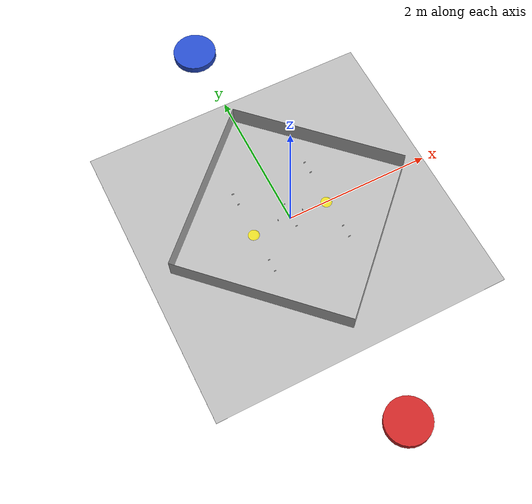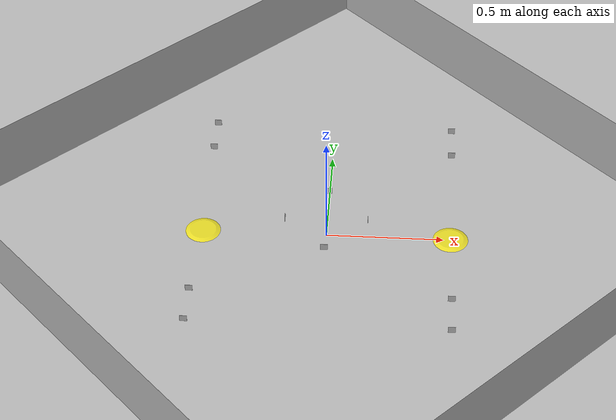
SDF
<sdf version="1.4">
 <world name="onigiri_field">
  <scene><shadows>false</shadows></scene>
  <physics name="ode_100iters" type="ode">
   <real_time_update_rate>1000</real_time_update_rate>
   <max_step_size>0.001</max_step_size>
  </physics>
  <include><uri>model://sun</uri></include>
  <include><uri>model://my_ground_plane</uri></include>
  <model name="box_0_tag_1">
   <static>true</static>
   <pose>0 0.176 0.1 0 0 0</pose>
   <link name="link">
    <visual name="visual">
     <geometry><box><size>0.03 0.001 0.03</size></box></geometry>
     <material><script><uri>model://tags</uri><name>0001</name></script></material>
    </visual>
   </link>
  </model>
  <model name="box_0_tag_2">
   <static>true</static>
   <pose>0 -0.176 0.1 0 0 0</pose>
   <link name="link">
    <visual name="visual">
     <geometry><box><size>0.03 0.001 0.03</size></box></geometry>
     <material><script><uri>model://tags</uri><name>0002</name></script></material>
    </visual>
   </link>
  </model>
  <model name="box_0_tag_3">
   <static>true</static>
   <pose>0.176 0 0.1 0 0 1.571</pose>
   <link name="link">
    <visual name="visual">
     <geometry><box><size>0.03 0.001 0.03</size></box></geometry>
     <material><script><uri>model://tags</uri><name>0003</name></script></material>
    </visual>
   </link>
  </model>
  <model name="box_0_tag_4">
   <static>true</static>
   <pose>-0.176 0 0.1 0 0 1.571</pose>
   <link name="link">
    <visual name="visual">
     <geometry><box><size>0.03 0.001 0.03</size></box></geometry>
     <material><script><uri>model://tags</uri><name>0004</name></script></material>
    </visual>
   </link>
  </model>
  <model name="box_1_tag_5">
   <static>true</static>
   <pose>0.53 0.615 0.1 0 0 0</pose>
   <link name="link">
    <visual name="visual">
     <geometry><box><size>0.03 0.001 0.03</size></box></geometry>
     <material><script><uri>model://tags</uri><name>0005</name></script></material>
    </visual>
   </link>
  </model>
  <model name="box_1_tag_6">
   <static>true</static>
   <pose>0.53 0.445 0.1 0 0 0</pose>
   <link name="link">
    <visual name="visual">
     <geometry><box><size>0.03 0.001 0.03</size></box></geometry>
     <material><script><uri>model://tags</uri><name>0006</name></script></material>
    </visual>
   </link>
  </model>
  <model name="box_2_tag_7">
   <static>true</static>
   <pose>0.53 -0.445 0.1 0 0 0</pose>
   <link name="link">
    <visual name="visual">
     <geometry><box><size>0.03 0.001 0.03</size></box></geometry>
     <material><script><uri>model://tags</uri><name>0007</name></script></material>
    </visual>
   </link>
  </model>
  <model name="box_2_tag_8">
   <static>true</static>
   <pose>0.53 -0.615 0.1 0 0 0</pose>
   <link name="link">
    <visual name="visual">
     <geometry><box><size>0.03 0.001 0.03</size></box></geometry>
     <material><script><uri>model://tags</uri><name>0008</name></script></material>
    </visual>
   </link>
  </model>
  <model name="box_3_tag_9">
   <static>true</static>
   <pose>-0.53 0.615 0.1 0 0 0</pose>
   <link name="link">
    <visual name="visual">
     <geometry><box><size>0.03 0.001 0.03</size></box></geometry>
     <material><script><uri>model://tags</uri><name>0009</name></script></material>
    </visual>
   </link>
  </model>
  <model name="box_3_tag_10">
   <static>true</static>
   <pose>-0.53 0.445 0.1 0 0 0</pose>
   <link name="link">
    <visual name="visual">
     <geometry><box><size>0.03 0.001 0.03</size></box></geometry>
     <material><script><uri>model://tags</uri><name>0010</name></script></material>
    </visual>
   </link>
  </model>
  <model name="box_4_tag_11">
   <static>true</static>
   <pose>-0.53 -0.445 0.1 0 0 0</pose>
   <link name="link">
    <visual name="visual">
     <geometry><box><size>0.03 0.001 0.03</size></box></geometry>
     <material><script><uri>model://tags</uri><name>0011</name></script></material>
    </visual>
   </link>
  </model>
  <model name="box_4_tag_12">
   <static>true</static>
   <pose>-0.53 -0.615 0.1 0 0 0</pose>
   <link name="link">
    <visual name="visual">
     <geometry><box><size>0.03 0.001 0.03</size></box></geometry>
     <material><script><uri>model://tags</uri><name>0012</name></script></material>
    </visual>
   </link>
  </model>
  <model name="wall_1">
   <static>true</static>
   <pose>0.8485 0.8485 0.15 0 0 -0.785398163397</pose>
   <link name="link">
    <collision name="visual"><geometry><box><size>2.39992041535 0.0001 0.3</size></box></geometry></collision>
    <visual name="visual">
     <geometry><box><size>2.39992041535 0.0001 0.3</size></box></geometry>
     <material><script><uri>model://wall</uri><name>wall_1</name></script></material>
    </visual>
   </link>
  </model>
  <model name="wall_2">
   <static>true</static>
   <pose>0.8485 -0.8485 0.15 0 0 -2.35619449019</pose>
   <link name="link">
    <collision name="visual"><geometry><box><size>2.39992041535 0.0001 0.3</size></box></geometry></collision>
    <visual name="visual">
     <geometry><box><size>2.39992041535 0.0001 0.3</size></box></geometry>
     <material><script><uri>model://wall</uri><name>wall_2</name></script></material>
    </visual>
   </link>
  </model>
  <model name="wall_3">
   <static>true</static>
   <pose>-0.8485 -0.8485 0.15 0 0 2.35619449019</pose>
   <link name="link">
    <collision name="visual"><geometry><box><size>2.39992041535 0.0001 0.3</size></box></geometry></collision>
    <visual name="visual">
     <geometry><box><size>2.39992041535 0.0001 0.3</size></box></geometry>
     <material><script><uri>model://wall</uri><name>wall_3</name></script></material>
    </visual>
   </link>
  </model>
  <model name="wall_4">
   <static>true</static>
   <pose>-0.8485 0.8485 0.15 0 0 0.785398163397</pose>
   <link name="link">
    <collision name="visual"><geometry><box><size>2.39992041535 0.0001 0.3</size></box></geometry></collision>
    <visual name="visual">
     <geometry><box><size>2.39992041535 0.0001 0.3</size></box></geometry>
     <material><script><uri>model://wall</uri><name>wall_4</name></script></material>
    </visual>
   </link>
  </model>
  <model name="blue_maker">
   <static>true</static>
   <link name="link">
    <visual name="visual">
     <pose>0 3 0 0 0 0</pose>
     <geometry><cylinder><radius>0.3</radius><length>0.1</length></cylinder></geometry>
     <material><script><name>Gazebo/Blue</name></script></material>
    </visual>
   </link>
  </model>
  <model name="red_maker">
   <static>true</static>
   <link name="link">
    <visual name="visual">
     <pose>0 -3 0 0 0 0</pose>
     <geometry><cylinder><radius>0.3</radius><length>0.1</length></cylinder></geometry>
     <material><script><name>Gazebo/Red</name></script></material>
    </visual>
   </link>
  </model>
  <include><name>disc_0</name><pose>0.53 0 0.0025 0 0 0</pose><uri>model://disc</uri></include>
  <include><name>disc_1</name><pose>-0.53 0 0.0025 0 0 0</pose><uri>model://disc</uri></include>
 </world>
</sdf>

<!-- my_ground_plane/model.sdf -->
<sdf version="1.4">
<model name="my_ground_plane">
  <static>true</static>
    <link name="link">
      <collision name="collision">
        <geometry>
          <plane>
            <normal>0 0 1</normal>
            <size>4 4</size>
          </plane>
        </geometry>
          <surface>
            <friction>
              <ode>
                <mu>0.9</mu>
                <mu2>0.9</mu2>
              </ode>
            </friction>
          </surface>
      </collision>
      <visual name="visual">
        <cast_shadows>false</cast_shadows>
        <geometry>
          <plane>
            <normal>0 0 1</normal>
            <size>4 4</size>
          </plane>
        </geometry>
        <material>
          <script>
            <uri>model://my_ground_plane/my_ground_plane.material</uri>
            <name>MyGroundPlane/Image</name>
          </script>
        </material>
      </visual>
    </link>
  </model>
</sdf>

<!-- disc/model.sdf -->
<sdf version="1.5">
  <model name="disc">
    <static>true</static>
    <link name="link">
      <collision name="collision">
        <pose>0 0 0 0 0 0</pose>
        <geometry>
          <mesh>
            <uri>model://disc/disc.stl</uri>
            <scale>0.001 0.001 0.001</scale>
          </mesh>
        </geometry>
          <surface>
            <friction>
              <ode>
                <mu>0.95</mu>
                <mu2>0.95</mu2>
              </ode>
            </friction>
          </surface>
      </collision>
      <visual name="visual">
        <pose>0 0 0 0 0 0</pose>
        <geometry>
          <mesh>
            <uri>model://disc/disc.stl</uri>
            <scale>0.001 0.001 0.001</scale>
          </mesh>
        </geometry>
        <material><script><name>Gazebo/Yellow</name></script></material>
      </visual>
    </link>
  </model>
</sdf>
